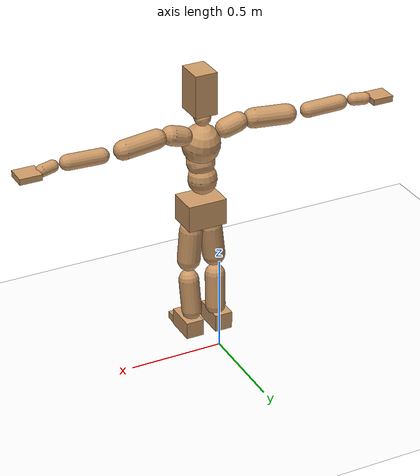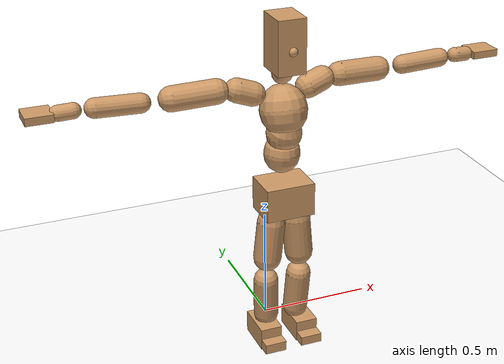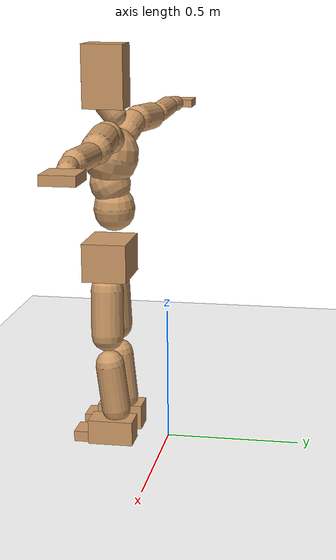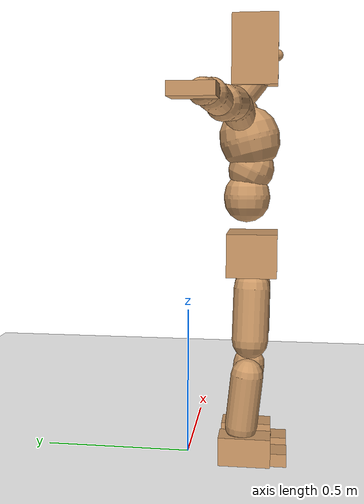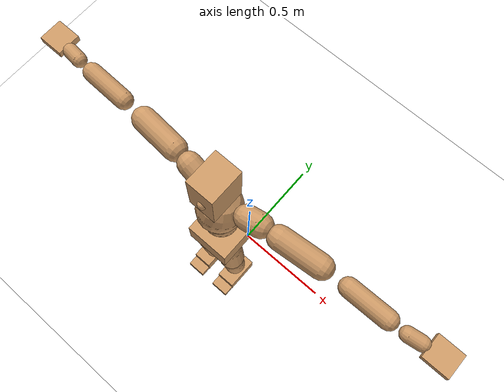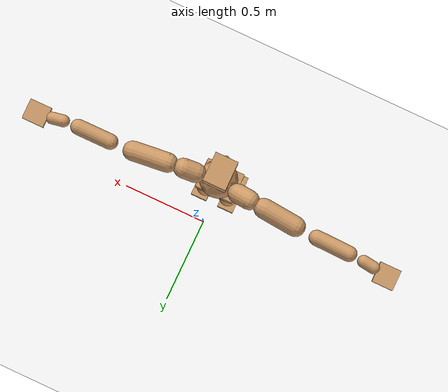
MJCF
<mujoco model="humanoid">
  <option integrator="implicitfast" />

  <visual>
    <global offwidth="1280" offheight="960" />
    <headlight active="1" ambient="0.34 0.34 0.34" diffuse="0.5 0.5 0.5" />
  </visual>

  <default>
    <joint damping="2" stiffness="2" armature="0.01" limited="true" solimplimit="0 .99 .01" />
    <geom condim="1" friction="0.7 0.005 0.0001" solimp=".99 .99 .003" solref="0.015 1" margin="0.001" rgba="0.8 0.6 .4 1" />
    <default class="smplcontact">
      <geom condim="3" friction="1. 0.005 0.0001" solref="0.015 1" solimp="0.98 0.98 0.001" priority="1" />
    </default>
    <default class="stiff_medium">
      <joint stiffness="10" />
    </default>
    <default class="stiff_medium_higher">
      <joint stiffness="50" />
    </default>
    <default class="stiff_high">
      <joint stiffness="100" />
    </default>
  </default>

  <asset>
    <texture type="skybox" builtin="gradient" rgb1="0.99 0.99 0.99" rgb2="0.608 0.828 0.892" width="100" />
    <texture builtin="flat" height="1278" mark="cross" markrgb="1 1 1" name="texgeom" random="0.01" rgb1="0.8 0.6 0.4" rgb2="0.8 0.6 0.4" type="cube" width="127" />
    <texture name="texplane" type="2d" builtin="checker" markrgb="1 1 1" rgb1="0.756 0.772 0.76" rgb2="0.6 0.6 0.6" width="100" height="100" />
    <material name="MatPlane" reflectance="0.5" texture="texplane" texrepeat="1 1" texuniform="true" />
    <material name="geom" texture="texgeom" texuniform="true" />
  </asset>

  <worldbody>
    <light name="tracking_light" pos="0 0 7" dir="0 0 -1" directional="true" cutoff="100" exponent="1" diffuse="1 1 1" specular="0.1 0.1 0.1" mode="trackcom" />
    <camera name="back" pos="0 3 2.4" xyaxes="-1 0 0 0 -1 2" mode="trackcom" />
    <camera name="side" pos="-3 0 2.4" xyaxes="0 -1 0 1 0 2" mode="trackcom" />
    <camera name="front_side" pos="-2.8 -2.8 0.8" xyaxes="0.5 -0.5 0 0.1 0.1 1" mode="trackcom" />
    <geom condim="3" name="floor" pos="0 0 0" rgba="1 1 1 1" size="100 100 .2" type="plane" material="MatPlane" />
    <body name="Pelvis" pos="-0.0018 -0.2233 0.714475" euler="90 0 0">
      <site name="Pelvis" size="0.01" />
      <freejoint name="Pelvis" />
      <geom type="box" pos="-0.0000 -0.0121 -0.0055" size="0.1069 0.0722 0.083" quat="1.0000 0.0000 0.0000 0.0000" density="3165.830099" name="Pelvis" />
      <body name="L_Hip" pos="0.052125 -0.06855 -0.0051">
        <joint name="L_Hip_x" type="hinge" pos="0 0 0" axis="1 0 0" stiffness="6.246094795918367" range="-160.0 22.92" class="stiff_medium" damping="8.291075045961076" armature="0.004891370984683403"/>
        <joint name="L_Hip_y" type="hinge" pos="0 0 0" axis="0 1 0" stiffness="6.283432346938776" range="-70.0 70.0" class="stiff_medium" damping="6.622206330553068" armature="0.006979245460609147"/>
        <joint name="L_Hip_z" type="hinge" pos="0 0 0" axis="0 0 1" stiffness="6.280236020408163" range="-28.65 90.0" class="stiff_medium" damping="5.5406378528423375" armature="0.004888139190404852"/>
        <geom type="capsule" density="2040.816327" fromto="0.005175 -0.05625 -0.000675 0.02055 -0.22515 -0.0027" size="0.0615" name="L_Hip" />
        <body name="L_Knee" pos="0.025725 -0.2814 -0.003375">
          <joint name="L_Knee_x" type="hinge" pos="0 0 0" axis="1 0 0" range="-5.16 171.89" damping="4.629153389768338" armature="0.005182973512521486" stiffness="1.292034693877551"/>
          <joint name="L_Knee_y" type="hinge" pos="0 0 0" axis="0 1 0" range="-4.58 6.88" damping="5.469884734588186" armature="0.007381715461698131" stiffness="1.2666279591836735"/>
          <joint name="L_Knee_z" type="hinge" pos="0 0 0" axis="0 0 1" range="-6.88 4.58" damping="4.641672627872135" armature="0.005166231774225988" stiffness="1.3032422448979593"/>
          <geom type="capsule" density="1234.567901" fromto="-0.002025 -0.0597 -0.006525 -0.008175 -0.2388 -0.02625" size="0.0541" name="L_Knee" />
          <body name="L_Ankle" pos="-0.0102 -0.2985 -0.032775">
            <joint name="L_Ankle_x" type="hinge" pos="0 0 0" axis="1 0 0" range="-45.84 45.84" class="stiff_medium" damping="4.385268345779512" armature="0.007122436468331768" stiffness="7.5"/>
            <joint name="L_Ankle_y" type="hinge" pos="0 0 0" axis="0 1 0" range="-74.48 22.92" class="stiff_medium" damping="2.209050591087885" armature="0.007229488168867754" stiffness="7.5"/>
            <joint name="L_Ankle_z" type="hinge" pos="0 0 0" axis="0 0 1" range="-4.58 4.58" class="stiff_medium" damping="4.627293284407269" armature="0.007930312274044672" stiffness="7.5"/>
            <geom type="box" pos="0.017475 -0.017925 0.01815" size="0.0483 0.0464 0.085" quat="1.0000 0.0000 0.0000 0.0000" density="449.071558" name="L_Ankle" class="smplcontact" />
            <body name="L_Toe" pos="0.0198 -0.04185 0.089475">
              <joint name="L_Toe_x" type="hinge" pos="0 0 0" axis="1 0 0" range="-91.67 22.92" armature="0.008336677887503873" damping="1.581456090522643" stiffness="1.5"/>
              <joint name="L_Toe_y" type="hinge" pos="0 0 0" axis="0 1 0" range="-4.58 4.58" armature="0.008828055290798205" damping="1.6273956455759186" stiffness="1.5"/>
              <joint name="L_Toe_z" type="hinge" pos="0 0 0" axis="0 0 1" range="-4.58 4.58" armature="0.00982159395199263" damping="1.71653085774704" stiffness="1.5"/>
              <geom type="box" pos="-0.00225 0.004125 0.0186" size="0.0478 0.02 0.0496" quat="1.0000 0.0000 0.0000 0.0000" density="423.206892" name="L_Toe" class="smplcontact" />
            </body>
          </body>
        </body>
      </body>
      <body name="R_Hip" pos="-0.050775 -0.067875 -0.003225">
        <joint name="R_Hip_x" type="hinge" pos="0 0 0" axis="1 0 0" stiffness="6.246094795918367" range="-160.0 22.92" class="stiff_medium" damping="8.291075045961076" armature="0.004891370984683403"/>
        <joint name="R_Hip_y" type="hinge" pos="0 0 0" axis="0 1 0" stiffness="6.283432346938776" range="-70.0 70.0" class="stiff_medium" damping="6.622206330553068" armature="0.006979245460609147"/>
        <joint name="R_Hip_z" type="hinge" pos="0 0 0" axis="0 0 1" stiffness="6.280236020408163" range="-90.0 28.65" class="stiff_medium" damping="5.5406378528423375" armature="0.004888139190404852"/>
        <geom type="capsule" density="2040.816327" fromto="-0.005775 -0.057375 -0.00135 -0.02295 -0.229575 -0.005325" size="0.0606" name="R_Hip" />
        <body name="R_Knee" pos="-0.028725 -0.28695 -0.006675">
          <joint name="R_Knee_x" type="hinge" pos="0 0 0" axis="1 0 0" range="-5.16 171.89" damping="4.629153389768338" armature="0.005182973512521486" stiffness="1.292034693877551"/>
          <joint name="R_Knee_y" type="hinge" pos="0 0 0" axis="0 1 0" range="-6.88 4.58" damping="5.469884734588186" armature="0.007381715461698131" stiffness="1.2666279591836735"/>
          <joint name="R_Knee_z" type="hinge" pos="0 0 0" axis="0 0 1" range="-4.58 6.88" damping="4.641672627872135" armature="0.005166231774225988" stiffness="1.3032422448979593"/>
          <geom type="capsule" density="1234.567901" fromto="0.0024 -0.059775 -0.006375 0.00945 -0.239025 -0.02535" size="0.0541" name="R_Knee" />
          <body name="R_Ankle" pos="0.01185 -0.2988 -0.031725">
            <joint name="R_Ankle_x" type="hinge" pos="0 0 0" axis="1 0 0" range="-45.84 45.84" class="stiff_medium" damping="4.385268345779512" armature="0.007122436468331768" stiffness="7.5"/>
            <joint name="R_Ankle_y" type="hinge" pos="0 0 0" axis="0 1 0" range="-22.92 74.48" class="stiff_medium" damping="2.209050591087885" armature="0.007229488168867754" stiffness="7.5"/>
            <joint name="R_Ankle_z" type="hinge" pos="0 0 0" axis="0 0 1" range="-4.58 4.58" class="stiff_medium" damping="4.627293284407269" armature="0.007930312274044672" stiffness="7.5"/>
            <geom type="box" pos="-0.0159 -0.01305 0.0192" size="0.0483 0.0478 0.0865" quat="1.0000 0.0000 0.0000 0.0000" density="434.700981" name="R_Ankle" class="smplcontact" />
            <body name="R_Toe" pos="-0.01905 -0.036075 0.092475">
              <joint name="R_Toe_x" type="hinge" pos="0 0 0" axis="1 0 0" range="-91.67 22.92" armature="0.008336677887503873" damping="1.581456090522643" stiffness="1.5"/>
              <joint name="R_Toe_y" type="hinge" pos="0 0 0" axis="0 1 0" range="-4.58 4.58" armature="0.008828055290798205" damping="1.6273956455759186" stiffness="1.5"/>
              <joint name="R_Toe_z" type="hinge" pos="0 0 0" axis="0 0 1" range="-4.58 4.58" armature="0.00982159395199263" damping="1.71653085774704" stiffness="1.5"/>
              <geom type="box" pos="0.00315 0.003375 0.017025" size="0.0479 0.0216 0.0493" quat="1.0000 0.0000 0.0000 0.0000" density="407.384095" name="R_Toe" class="smplcontact" />
            </body>
          </body>
        </body>
      </body>
      <body name="Torso" pos="-0.0025 0.109 -0.0267">
        <joint name="Torso_x" type="hinge" pos="0 0 0" axis="1 0 0" range="-25.78 57.3" class="stiff_medium" damping="16.249002662379556" armature="0.011000822944888125" stiffness="10.667084285714289"/>
        <joint name="Torso_y" type="hinge" pos="0 0 0" axis="0 1 0" range="-57.3 57.3" class="stiff_high" damping="25.827862257678852" armature="0.015782642166796142" stiffness="105.6664755102041"/>
        <joint name="Torso_z" type="hinge" pos="0 0 0" axis="0 0 1" range="-34.38 34.38" class="stiff_high" damping="22.95942684909094" armature="0.012628565201764912" stiffness="104.35375531914897"/>
        <geom type="capsule" density="2040.816327" fromto="0.0025 0.0608 0.0005 0.003 0.0743 0.0006" size="0.0769" name="Torso" />
        <body name="Spine" pos="0.0055 0.1352 0.0011">
          <joint name="Spine_x" type="hinge" pos="0 0 0" axis="1 0 0" stiffness="10.801640204081632" range="-25.78 57.3" class="stiff_medium" damping="16.529498689681223" armature="0.01124209211728705"/>
          <joint name="Spine_y" type="hinge" pos="0 0 0" axis="0 1 0" stiffness="10.993194042553192" range="-57.3 57.3" class="stiff_high" damping="10.550939846165114" armature="0.015822621024438047"/>
          <joint name="Spine_z" type="hinge" pos="0 0 0" axis="0 0 1" stiffness="21.950184081632656" range="-34.38 34.38" class="stiff_high" damping="14.755254913518769" armature="0.013775988465595869"/>
          <geom type="capsule" density="2040.816327" fromto="0.0007 0.0238 0.0114 0.0008 0.0291 0.014" size="0.0755" name="Spine" />
          <body name="Chest" pos="0.0015 0.0529 0.0254">
            <joint name="Chest_x" type="hinge" pos="0 0 0" axis="1 0 0" stiffness="11.160686250000001" range="-25.78 57.3" class="stiff_medium" damping="16.91302563562017" armature="0.011391192649850421"/>
            <joint name="Chest_y" type="hinge" pos="0 0 0" axis="0 1 0" stiffness="12.279827826086954" range="-57.3 57.3" class="stiff_high" damping="11.153527766970868" armature="0.015828955346832537"/>
            <joint name="Chest_z" type="hinge" pos="0 0 0" axis="0 0 1" stiffness="22.066057083333334" range="-34.38 34.38" class="stiff_high" damping="15.064016907343916" armature="0.01428316177394549"/>
            <geom type="capsule" density="2040.816327" fromto="-0.0009 0.0682 -0.0173 -0.001 0.0833 -0.0212" size="0.1002" name="Chest" />
            <body name="Neck" pos="-0.0028 0.2139 -0.0429">
              <joint name="Neck_x" type="hinge" pos="0 0 0" axis="1 0 0" range="-28.65 57.3" class="stiff_medium_higher" damping="10.000000000000004" armature="0.010000000000000009" stiffness="50.0"/>
              <joint name="Neck_y" type="hinge" pos="0 0 0" axis="0 1 0" range="-40.11 40.11" class="stiff_medium_higher" damping="10.0" armature="0.01" stiffness="50.0"/>
              <joint name="Neck_z" type="hinge" pos="0 0 0" axis="0 0 1" range="-40.11 40.11" class="stiff_medium_higher" damping="9.999999999999988" armature="0.009999999999999976" stiffness="50.0"/>
              <geom type="capsule" density="1000" fromto="0.001 0.013 0.0103 0.0041 0.052 0.0411" size="0.0436" name="Neck" />
              <body name="Head" pos="0.0052 0.065 0.0513">
                <joint name="Head_x" type="hinge" pos="0 0 0" axis="1 0 0" range="-28.65 57.3" class="stiff_medium_higher" damping="1.9999999999999978" armature="0.009999999999999978" stiffness="50.0"/>
                <joint name="Head_y" type="hinge" pos="0 0 0" axis="0 1 0" range="-40.11 40.11" class="stiff_medium_higher" damping="1.9999999999999998" armature="0.009999999999999998" stiffness="50.0"/>
                <joint name="Head_z" type="hinge" pos="0 0 0" axis="0 0 1" range="-40.11 40.11" class="stiff_medium_higher" damping="1.999999999999994" armature="0.00999999999999994" stiffness="50.0"/>
                <geom type="box" pos="-0.0042 0.0876 -0.0116" size="0.0606 0.1154 0.076" quat="1.0000 0.0000 0.0000 0.0000" density="1018.069894" name="Head" />
                <geom type="capsule" name="nose" size="0.02 0.01" pos="0 0.07 0.05" quat="1 0 0 0" mass="0" contype="0" conaffinity="0" />
              </body>
            </body>
            <body name="L_Thorax" pos="0.09456 0.14604 -0.04092">
              <joint name="L_Thorax_x" type="hinge" pos="0 0 0" axis="1 0 0" range="-10.89 4.58" class="stiff_medium_higher" damping="27.34282803714568" armature="0.013883161405287683" stiffness="67.31448112244898"/>
              <joint name="L_Thorax_y" type="hinge" pos="0 0 0" axis="0 1 0" range="-28.65 17.19" class="stiff_medium_higher" damping="29.39539222803986" armature="0.015973211475722778" stiffness="67.620175"/>
              <joint name="L_Thorax_z" type="hinge" pos="0 0 0" axis="0 0 1" range="-31.51 40.11" class="stiff_medium_higher" damping="29.39640952740424" armature="0.01597511513827913" stiffness="67.61679693877551"/>
              <geom type="capsule" density="1000" fromto="0.02184 0.00732 -0.00216 0.08736 0.02928 -0.00852" size="0.0521" name="L_Thorax" />
              <body name="L_Shoulder" pos="0.1092 0.0366 -0.01068">
                <joint name="L_Shoulder_x" type="hinge" pos="0 0 0" axis="1 0 0" range="-97.4 97.4" class="stiff_medium" damping="7.934224871342943" armature="0.013032307273704977" stiffness="13.417919999999999"/>
                <joint name="L_Shoulder_y" type="hinge" pos="0 0 0" axis="0 1 0" range="-108.86 80.21" class="stiff_medium" damping="8.787023272078152" armature="0.015885669306109254" stiffness="13.501298367346937"/>
                <joint name="L_Shoulder_z" type="hinge" pos="0 0 0" axis="0 0 1" range="-97.4 85.94" class="stiff_medium" damping="8.786069504764416" armature="0.01588800876452122" stiffness="13.496380000000002"/>
                <geom type="capsule" density="1000" fromto="0.06228 -0.00312 -0.0066 0.24924 -0.01224 -0.0264" size="0.0517" name="L_Shoulder" />
                <body name="L_Elbow" pos="0.31152 -0.01536 -0.033">
                  <joint name="L_Elbow_x" type="hinge" pos="0 0 0" axis="1 0 0" range="-17.19 4.58" damping="6.232456205291445" armature="0.011731525217588483" stiffness="2.6488293469387756"/>
                  <joint name="L_Elbow_y" type="hinge" pos="0 0 0" axis="0 1 0" range="-180.0 17.19" damping="7.156106367972159" armature="0.015461775606096717" stiffness="2.649623673469388"/>
                  <joint name="L_Elbow_z" type="hinge" pos="0 0 0" axis="0 0 1" range="-100.84 4.58" damping="7.157115854883433" armature="0.015474031127394245" stiffness="2.648272163265306"/>
                  <geom type="capsule" density="1000" fromto="0.05976 0.00216 -0.00024 0.23928 0.00864 -0.00108" size="0.0405" name="L_Elbow" />
                  <body name="L_Wrist" pos="0.29904 0.0108 -0.00144">
                    <joint name="L_Wrist_x" type="hinge" pos="0 0 0" axis="1 0 0" range="-180.0 22.92" armature="0.01147048725635329" damping="2.3885555565203194" stiffness="2.4869029183673472"/>
                    <joint name="L_Wrist_y" type="hinge" pos="0 0 0" axis="0 1 0" range="-17.19 17.19" armature="0.014137841032973877" damping="2.6585613747278862" stiffness="2.4996562653061227"/>
                    <joint name="L_Wrist_z" type="hinge" pos="0 0 0" axis="0 0 1" range="-22.92 22.92" armature="0.01428379874194635" damping="2.669498465346292" stiffness="2.4945122040816328"/>
                    <geom type="capsule" density="1000" fromto="0.02016 -0.00192 -0.0036 0.08064 -0.0078 -0.0144" size="0.0318" name="L_Wrist" class="smplcontact" />
                    <body name="L_Hand" pos="0.1008 -0.00984 -0.01788">
                      <joint name="L_Hand_x" type="hinge" pos="0 0 0" axis="1 0 0" range="-17.19 17.19" armature="0.010191691106290297" damping="2.2117892600831897" stiffness="2.4000000000000004"/>
                      <joint name="L_Hand_y" type="hinge" pos="0 0 0" axis="0 1 0" range="-51.57 51.57" armature="0.012318239464289435" damping="2.4316157062453208" stiffness="2.4000000000000004"/>
                      <joint name="L_Hand_z" type="hinge" pos="0 0 0" axis="0 0 1" range="-91.67 91.67" armature="0.01288509998431736" damping="2.4869354620641713" stiffness="2.4000000000000004"/>
                      <geom type="box" pos="0.05916 0.0012 -0.00696" size="0.0585 0.0158 0.0538" quat="1.0000 0.0000 0.0000 0.0000" density="400.552564" name="L_Hand" class="smplcontact" />
                    </body>
                  </body>
                </body>
              </body>
            </body>
            <body name="R_Thorax" pos="-0.09816 0.14256 -0.04632">
              <joint name="R_Thorax_x" type="hinge" pos="0 0 0" axis="1 0 0" range="-10.89 4.58" class="stiff_medium_higher" damping="27.34282803714568" armature="0.013883161405287683" stiffness="67.31448112244898"/>
              <joint name="R_Thorax_y" type="hinge" pos="0 0 0" axis="0 1 0" range="-17.19 28.65" class="stiff_medium_higher" damping="29.39539222803986" armature="0.015973211475722778" stiffness="67.620175"/>
              <joint name="R_Thorax_z" type="hinge" pos="0 0 0" axis="0 0 1" range="-40.11 31.51" class="stiff_medium_higher" damping="29.39640952740424" armature="0.01597511513827913" stiffness="67.61679693877551"/>
              <geom type="capsule" density="1000" fromto="-0.02304 0.0078 -0.00216 -0.09216 0.0312 -0.00876" size="0.0511" name="R_Thorax" />
              <body name="R_Shoulder" pos="-0.1152 0.03912 -0.01092">
                <joint name="R_Shoulder_x" type="hinge" pos="0 0 0" axis="1 0 0" range="-97.4 97.4" class="stiff_medium" damping="7.934224871342943" armature="0.013032307273704977" stiffness="13.417919999999999"/>
                <joint name="R_Shoulder_y" type="hinge" pos="0 0 0" axis="0 1 0" range="-80.21 108.86" class="stiff_medium" damping="8.787023272078152" armature="0.015885669306109254" stiffness="13.501298367346937"/>
                <joint name="R_Shoulder_z" type="hinge" pos="0 0 0" axis="0 0 1" range="-85.94 97.4" class="stiff_medium" damping="8.786069504764416" armature="0.01588800876452122" stiffness="13.496380000000002"/>
                <geom type="capsule" density="1000" fromto="-0.06084 -0.00324 -0.00516 -0.2436 -0.01284 -0.02052" size="0.0531" name="R_Shoulder" />
                <body name="R_Elbow" pos="-0.30444 -0.01596 -0.02568">
                  <joint name="R_Elbow_x" type="hinge" pos="0 0 0" axis="1 0 0" range="-17.19 4.58" damping="6.232456205291445" armature="0.011731525217588483" stiffness="2.6488293469387756"/>
                  <joint name="R_Elbow_y" type="hinge" pos="0 0 0" axis="0 1 0" range="-17.19 180.0" damping="7.156106367972159" armature="0.015461775606096717" stiffness="2.649623673469388"/>
                  <joint name="R_Elbow_z" type="hinge" pos="0 0 0" axis="0 0 1" range="-4.58 100.84" damping="7.157115854883433" armature="0.015474031127394245" stiffness="2.648272163265306"/>
                  <geom type="capsule" density="1000" fromto="-0.06132 0.00192 -0.00132 -0.24504 0.00744 -0.00528" size="0.0408" name="R_Elbow" />
                  <body name="R_Wrist" pos="-0.30636 0.00936 -0.00672">
                    <joint name="R_Wrist_x" type="hinge" pos="0 0 0" axis="1 0 0" range="-180.0 22.92" armature="0.01147048725635329" damping="2.3885555565203194" stiffness="2.4869029183673472"/>
                    <joint name="R_Wrist_y" type="hinge" pos="0 0 0" axis="0 1 0" range="-17.19 17.19" armature="0.014137841032973877" damping="2.6585613747278862" stiffness="2.4996562653061227"/>
                    <joint name="R_Wrist_z" type="hinge" pos="0 0 0" axis="0 0 1" range="-22.92 22.92" armature="0.01428379874194635" damping="2.669498465346292" stiffness="2.4945122040816328"/>
                    <geom type="capsule" density="1000" fromto="-0.02028 -0.00144 -0.00252 -0.08124 -0.00588 -0.00996" size="0.0326" name="R_Wrist" class="smplcontact" />
                    <body name="R_Hand" pos="-0.10152 -0.00732 -0.01236">
                      <joint name="R_Hand_x" type="hinge" pos="0 0 0" axis="1 0 0" range="-17.19 17.19" armature="0.010191691106290297" damping="2.2117892600831897" stiffness="2.4000000000000004"/>
                      <joint name="R_Hand_y" type="hinge" pos="0 0 0" axis="0 1 0" range="-51.57 51.57" armature="0.012318239464289435" damping="2.4316157062453208" stiffness="2.4000000000000004"/>
                      <joint name="R_Hand_z" type="hinge" pos="0 0 0" axis="0 0 1" range="-91.67 91.67" armature="0.01288509998431736" damping="2.4869354620641713" stiffness="2.4000000000000004"/>
                      <geom type="box" pos="-0.05544 -0.00108 -0.00948" size="0.0569 0.0164 0.0546" quat="1.0000 0.0000 0.0000 0.0000" density="403.679611" name="R_Hand" class="smplcontact" />
                    </body>
                  </body>
                </body>
              </body>
            </body>
          </body>
        </body>
      </body>
    </body>
  </worldbody>
  <actuator>
    <general name="L_Hip_x" joint="L_Hip_x" biastype="affine" gainprm="179.46908180691764" biasprm="-134.4938865848036 -112.42970632653059 -1.1054766727948102" ctrllimited="true" ctrlrange="-1 1" forcerange="-224.85941265306118 224.85941265306118" />
    <general name="L_Hip_y" joint="L_Hip_y" biastype="affine" gainprm="138.1798943032993" biasprm="0.0 -113.10178224489796 -1.3244412661106135" ctrllimited="true" ctrlrange="-1 1" forcerange="-226.20356448979592 226.20356448979592" />
    <general name="L_Hip_z" joint="L_Hip_z" biastype="affine" gainprm="117.04788889139031" biasprm="60.52160120932823 -113.04424836734694 -1.1081275705684674" ctrllimited="true" ctrlrange="-1 1" forcerange="-226.08849673469388 226.08849673469388" />
    <general name="L_Knee_x" joint="L_Knee_x" biastype="affine" gainprm="179.66355466802756" biasprm="169.1912141756579 -116.2831224489796 -1.1572883474420845" ctrllimited="true" ctrlrange="-1 1" forcerange="-232.5662448979592 232.5662448979592" />
    <general name="L_Knee_y" joint="L_Knee_y" biastype="affine" gainprm="11.400491346869197" biasprm="2.2880567275566452 -113.99651632653062 -1.3674711836470466" ctrllimited="true" ctrlrange="-1 1" forcerange="-227.99303265306125 227.99303265306125" />
    <general name="L_Knee_z" joint="L_Knee_z" biastype="affine" gainprm="11.730044191831292" biasprm="-2.3541973508910967 -117.29180204081634 -1.1604181569680339" ctrllimited="true" ctrlrange="-1 1" forcerange="-234.58360408163267 234.58360408163267" />
    <general name="L_Ankle_x" joint="L_Ankle_x" biastype="affine" gainprm="54.00397771520855" biasprm="0.0 -67.5 -1.461756115259837" ctrllimited="true" ctrlrange="-1 1" forcerange="-135.0 135.0" />
    <general name="L_Ankle_y" joint="L_Ankle_y" biastype="affine" gainprm="57.37333583618361" biasprm="-30.371346978579332 -67.5 -1.4727003940585899" ctrllimited="true" ctrlrange="-1 1" forcerange="-135.0 135.0" />
    <general name="L_Ankle_z" joint="L_Ankle_z" biastype="affine" gainprm="5.395685382540469" biasprm="0.0 -67.5 -1.5424310948024231" ctrllimited="true" ctrlrange="-1 1" forcerange="-135.0 135.0" />
    <general name="L_Toe_x" joint="L_Toe_x" biastype="affine" gainprm="53.999265326228155" biasprm="-32.39767424014474 -54.0 -0.6325824362090572" ctrllimited="true" ctrlrange="-1 1" forcerange="-108.0 108.0" />
    <general name="L_Toe_y" joint="L_Toe_y" biastype="affine" gainprm="4.3165483060323755" biasprm="0.0 -54.0 -0.6509582582303675" ctrllimited="true" ctrlrange="-1 1" forcerange="-108.0 108.0" />
    <general name="L_Toe_z" joint="L_Toe_z" biastype="affine" gainprm="4.3165483060323755" biasprm="0.0 -54.0 -0.686612343098816" ctrllimited="true" ctrlrange="-1 1" forcerange="-108.0 108.0" />
    <general name="R_Hip_x" joint="R_Hip_x" biastype="affine" gainprm="179.46908180691764" biasprm="-134.4938865848036 -112.42970632653059 -1.1054766727948102" ctrllimited="true" ctrlrange="-1 1" forcerange="-224.85941265306118 224.85941265306118" />
    <general name="R_Hip_y" joint="R_Hip_y" biastype="affine" gainprm="138.1798943032993" biasprm="0.0 -113.10178224489796 -1.3244412661106135" ctrllimited="true" ctrlrange="-1 1" forcerange="-226.20356448979592 226.20356448979592" />
    <general name="R_Hip_z" joint="R_Hip_z" biastype="affine" gainprm="117.04788889139031" biasprm="-60.52160120932823 -113.04424836734694 -1.1081275705684674" ctrllimited="true" ctrlrange="-1 1" forcerange="-226.08849673469388 226.08849673469388" />
    <general name="R_Knee_x" joint="R_Knee_x" biastype="affine" gainprm="179.66355466802756" biasprm="169.1912141756579 -116.2831224489796 -1.1572883474420845" ctrllimited="true" ctrlrange="-1 1" forcerange="-232.5662448979592 232.5662448979592" />
    <general name="R_Knee_y" joint="R_Knee_y" biastype="affine" gainprm="11.400491346869197" biasprm="-2.2880567275566452 -113.99651632653062 -1.3674711836470466" ctrllimited="true" ctrlrange="-1 1" forcerange="-227.99303265306125 227.99303265306125" />
    <general name="R_Knee_z" joint="R_Knee_z" biastype="affine" gainprm="11.730044191831292" biasprm="2.3541973508910967 -117.29180204081634 -1.1604181569680339" ctrllimited="true" ctrlrange="-1 1" forcerange="-234.58360408163267 234.58360408163267" />
    <general name="R_Ankle_x" joint="R_Ankle_x" biastype="affine" gainprm="54.00397771520855" biasprm="0.0 -67.5 -1.461756115259837" ctrllimited="true" ctrlrange="-1 1" forcerange="-135.0 135.0" />
    <general name="R_Ankle_y" joint="R_Ankle_y" biastype="affine" gainprm="57.37333583618361" biasprm="30.371346978579332 -67.5 -1.4727003940585899" ctrllimited="true" ctrlrange="-1 1" forcerange="-135.0 135.0" />
    <general name="R_Ankle_z" joint="R_Ankle_z" biastype="affine" gainprm="5.395685382540469" biasprm="0.0 -67.5 -1.5424310948024231" ctrllimited="true" ctrlrange="-1 1" forcerange="-135.0 135.0" />
    <general name="R_Toe_x" joint="R_Toe_x" biastype="affine" gainprm="53.999265326228155" biasprm="-32.39767424014474 -54.0 -0.6325824362090572" ctrllimited="true" ctrlrange="-1 1" forcerange="-108.0 108.0" />
    <general name="R_Toe_y" joint="R_Toe_y" biastype="affine" gainprm="4.3165483060323755" biasprm="0.0 -54.0 -0.6509582582303675" ctrllimited="true" ctrlrange="-1 1" forcerange="-108.0 108.0" />
    <general name="R_Toe_z" joint="R_Toe_z" biastype="affine" gainprm="4.3165483060323755" biasprm="0.0 -54.0 -0.686612343098816" ctrllimited="true" ctrlrange="-1 1" forcerange="-108.0 108.0" />
    <general name="Torso_x" joint="Torso_x" biastype="affine" gainprm="185.60976811664653" biasprm="70.4191127953382 -256.0100228571429 -4.333067376634548" ctrllimited="true" ctrlrange="-1 1" forcerange="-384.01503428571436 384.01503428571436" />
    <general name="Torso_y" joint="Torso_y" biastype="affine" gainprm="253.61822171989738" biasprm="0.0 -253.59954122448983 -5.165572451535771" ctrllimited="true" ctrlrange="-1 1" forcerange="-380.39931183673474 380.39931183673474" />
    <general name="Torso_z" joint="Torso_z" biastype="affine" gainprm="150.28047671343057" biasprm="0.0 -250.44901276595752 -4.591885369818188" ctrllimited="true" ctrlrange="-1 1" forcerange="-375.6735191489363 375.6735191489363" />
    <general name="Spine_x" joint="Spine_x" biastype="affine" gainprm="187.9510726510386" biasprm="71.3073881795948 -259.2393648979592 -4.407866317248326" ctrllimited="true" ctrlrange="-1 1" forcerange="-388.8590473469388 388.8590473469388" />
    <general name="Spine_y" joint="Spine_y" biastype="affine" gainprm="263.8560915968915" biasprm="0.0 -263.8366570212766 -5.275469923082557" ctrllimited="true" ctrlrange="-1 1" forcerange="-395.7549855319149 395.7549855319149" />
    <general name="Spine_z" joint="Spine_z" biastype="affine" gainprm="158.05296693189538" biasprm="0.0 -263.4022089795919 -4.918418304506257" ctrllimited="true" ctrlrange="-1 1" forcerange="-395.1033134693878 395.1033134693878" />
    <general name="Chest_x" joint="Chest_x" biastype="affine" gainprm="194.19855805015155" biasprm="73.67764263048598 -267.85647 -4.510140169498712" ctrllimited="true" ctrlrange="-1 1" forcerange="-401.78470500000003 401.78470500000003" />
    <general name="Chest_y" joint="Chest_y" biastype="affine" gainprm="294.73757700737673" biasprm="0.0 -294.71586782608694 -5.576763883485434" ctrllimited="true" ctrlrange="-1 1" forcerange="-442.0738017391304 442.0738017391304" />
    <general name="Chest_z" joint="Chest_z" biastype="affine" gainprm="158.88731399878043" biasprm="0.0 -264.792685 -5.021338969114638" ctrllimited="true" ctrlrange="-1 1" forcerange="-397.1890275 397.1890275" />
    <general name="Neck_x" joint="Neck_x" biastype="affine" gainprm="27.00198885760427" biasprm="9.000662952534757 -36.0 -0.8000000000000004" ctrllimited="true" ctrlrange="-1 1" forcerange="-72.0 72.0" />
    <general name="Neck_y" joint="Neck_y" biastype="affine" gainprm="25.20185626709732" biasprm="0.0 -36.0 -0.8" ctrllimited="true" ctrlrange="-1 1" forcerange="-72.0 72.0" />
    <general name="Neck_z" joint="Neck_z" biastype="affine" gainprm="25.20185626709732" biasprm="0.0 -36.0 -0.799999999999999" ctrllimited="true" ctrlrange="-1 1" forcerange="-72.0 72.0" />
    <general name="Head_x" joint="Head_x" biastype="affine" gainprm="18.001325905069514" biasprm="6.000441968356505 -24.0 -0.7999999999999992" ctrllimited="true" ctrlrange="-1 1" forcerange="-48.0 48.0" />
    <general name="Head_y" joint="Head_y" biastype="affine" gainprm="16.801237511398213" biasprm="0.0 -24.0 -0.7999999999999999" ctrllimited="true" ctrlrange="-1 1" forcerange="-48.0 48.0" />
    <general name="Head_z" joint="Head_z" biastype="affine" gainprm="16.801237511398213" biasprm="0.0 -24.0 -0.7999999999999976" ctrllimited="true" ctrlrange="-1 1" forcerange="-48.0 48.0" />
    <general name="L_Thorax_x" joint="L_Thorax_x" biastype="affine" gainprm="21.810088599489532" biasprm="-8.896034845687073 -161.55475469387756 -2.1874262429716547" ctrllimited="true" ctrlrange="-1 1" forcerange="-323.1095093877551 323.1095093877551" />
    <general name="L_Thorax_y" joint="L_Thorax_y" biastype="affine" gainprm="64.92014975641781" biasprm="-16.230037439104454 -162.28842 -2.3516313782431886" ctrllimited="true" ctrlrange="-1 1" forcerange="-324.57684 324.57684" />
    <general name="L_Thorax_z" joint="L_Thorax_z" biastype="affine" gainprm="101.42558571489965" biasprm="12.179000797935451 -162.28031265306123 -2.3517127621923395" ctrllimited="true" ctrlrange="-1 1" forcerange="-324.56062530612246 324.56062530612246" />
    <general name="L_Shoulder_x" joint="L_Shoulder_x" biastype="affine" gainprm="109.48705143225524" biasprm="0.0 -64.406016 -2.115793299024785" ctrllimited="true" ctrlrange="-1 1" forcerange="-128.812032 128.812032" />
    <general name="L_Shoulder_y" joint="L_Shoulder_y" biastype="affine" gainprm="106.92684888169526" biasprm="-16.202751470146342 -64.80623216326529 -2.3432062058875074" ctrllimited="true" ctrlrange="-1 1" forcerange="-129.61246432653058 129.61246432653058" />
    <general name="L_Shoulder_z" joint="L_Shoulder_z" biastype="affine" gainprm="103.64852686442701" biasprm="-6.478739597831004 -64.782624 -2.3429518679371775" ctrllimited="true" ctrlrange="-1 1" forcerange="-129.565248 129.565248" />
    <general name="L_Elbow_x" joint="L_Elbow_x" biastype="affine" gainprm="18.115998712513008" biasprm="-10.493465492181402 -95.35785648979592 -0.9971929928466313" ctrllimited="true" ctrlrange="-1 1" forcerange="-190.71571297959184 190.71571297959184" />
    <general name="L_Elbow_y" joint="L_Elbow_y" biastype="affine" gainprm="164.14171059385552" biasprm="-135.52366703070956 -95.38645224489797 -1.1449770188755455" ctrllimited="true" ctrlrange="-1 1" forcerange="-190.77290448979593 190.77290448979593" />
    <general name="L_Elbow_z" joint="L_Elbow_z" biastype="affine" gainprm="87.70725119427513" biasprm="-80.08632138077144 -95.33779787755103 -1.1451385367813491" ctrllimited="true" ctrlrange="-1 1" forcerange="-190.67559575510205 190.67559575510205" />
    <general name="L_Wrist_x" joint="L_Wrist_x" biastype="affine" gainprm="26.423011144121567" biasprm="-20.454004487081686 -14.921417510204083 -0.9554222226081278" ctrllimited="true" ctrlrange="-1 1" forcerange="-29.842835020408167 29.842835020408167" />
    <general name="L_Wrist_y" joint="L_Wrist_y" biastype="affine" gainprm="4.499712708242443" biasprm="0.0 -14.997937591836736 -1.0634245498911545" ctrllimited="true" ctrlrange="-1 1" forcerange="-29.995875183673473 29.995875183673473" />
    <general name="L_Wrist_z" joint="L_Wrist_z" biastype="affine" gainprm="5.987270287979567" biasprm="0.0 -14.967073224489797 -1.0677993861385169" ctrllimited="true" ctrlrange="-1 1" forcerange="-29.934146448979593 29.934146448979593" />
    <general name="L_Hand_x" joint="L_Hand_x" biastype="affine" gainprm="4.320318217216685" biasprm="0.0 -14.400000000000002 -0.8847157040332759" ctrllimited="true" ctrlrange="-1 1" forcerange="-28.800000000000004 28.800000000000004" />
    <general name="L_Hand_y" joint="L_Hand_y" biastype="affine" gainprm="12.960954651650052" biasprm="0.0 -14.400000000000002 -0.9726462824981283" ctrllimited="true" ctrlrange="-1 1" forcerange="-28.800000000000004 28.800000000000004" />
    <general name="L_Hand_z" joint="L_Hand_z" biastype="affine" gainprm="23.03918388436611" biasprm="0.0 -14.400000000000002 -0.9947741848256686" ctrllimited="true" ctrlrange="-1 1" forcerange="-28.800000000000004 28.800000000000004" />
    <general name="R_Thorax_x" joint="R_Thorax_x" biastype="affine" gainprm="21.810088599489532" biasprm="-8.896034845687073 -161.55475469387756 -2.1874262429716547" ctrllimited="true" ctrlrange="-1 1" forcerange="-323.1095093877551 323.1095093877551" />
    <general name="R_Thorax_y" joint="R_Thorax_y" biastype="affine" gainprm="64.92014975641781" biasprm="16.230037439104443 -162.28842 -2.3516313782431886" ctrllimited="true" ctrlrange="-1 1" forcerange="-324.57684 324.57684" />
    <general name="R_Thorax_z" joint="R_Thorax_z" biastype="affine" gainprm="101.42558571489965" biasprm="-12.179000797935451 -162.28031265306123 -2.3517127621923395" ctrllimited="true" ctrlrange="-1 1" forcerange="-324.56062530612246 324.56062530612246" />
    <general name="R_Shoulder_x" joint="R_Shoulder_x" biastype="affine" gainprm="109.48705143225524" biasprm="0.0 -64.406016 -2.115793299024785" ctrllimited="true" ctrlrange="-1 1" forcerange="-128.812032 128.812032" />
    <general name="R_Shoulder_y" joint="R_Shoulder_y" biastype="affine" gainprm="106.92684888169526" biasprm="16.202751470146342 -64.80623216326529 -2.3432062058875074" ctrllimited="true" ctrlrange="-1 1" forcerange="-129.61246432653058 129.61246432653058" />
    <general name="R_Shoulder_z" joint="R_Shoulder_z" biastype="affine" gainprm="103.64852686442701" biasprm="6.478739597830989 -64.782624 -2.3429518679371775" ctrllimited="true" ctrlrange="-1 1" forcerange="-129.565248 129.565248" />
    <general name="R_Elbow_x" joint="R_Elbow_x" biastype="affine" gainprm="18.115998712513008" biasprm="-10.493465492181402 -95.35785648979592 -0.9971929928466313" ctrllimited="true" ctrlrange="-1 1" forcerange="-190.71571297959184 190.71571297959184" />
    <general name="R_Elbow_y" joint="R_Elbow_y" biastype="affine" gainprm="164.14171059385552" biasprm="135.52366703070956 -95.38645224489797 -1.1449770188755455" ctrllimited="true" ctrlrange="-1 1" forcerange="-190.77290448979593 190.77290448979593" />
    <general name="R_Elbow_z" joint="R_Elbow_z" biastype="affine" gainprm="87.70725119427513" biasprm="80.08632138077142 -95.33779787755103 -1.1451385367813491" ctrllimited="true" ctrlrange="-1 1" forcerange="-190.67559575510205 190.67559575510205" />
    <general name="R_Wrist_x" joint="R_Wrist_x" biastype="affine" gainprm="26.423011144121567" biasprm="-20.454004487081686 -14.921417510204083 -0.9554222226081278" ctrllimited="true" ctrlrange="-1 1" forcerange="-29.842835020408167 29.842835020408167" />
    <general name="R_Wrist_y" joint="R_Wrist_y" biastype="affine" gainprm="4.499712708242443" biasprm="0.0 -14.997937591836736 -1.0634245498911545" ctrllimited="true" ctrlrange="-1 1" forcerange="-29.995875183673473 29.995875183673473" />
    <general name="R_Wrist_z" joint="R_Wrist_z" biastype="affine" gainprm="5.987270287979567" biasprm="0.0 -14.967073224489797 -1.0677993861385169" ctrllimited="true" ctrlrange="-1 1" forcerange="-29.934146448979593 29.934146448979593" />
    <general name="R_Hand_x" joint="R_Hand_x" biastype="affine" gainprm="4.320318217216685" biasprm="0.0 -14.400000000000002 -0.8847157040332759" ctrllimited="true" ctrlrange="-1 1" forcerange="-28.800000000000004 28.800000000000004" />
    <general name="R_Hand_y" joint="R_Hand_y" biastype="affine" gainprm="12.960954651650052" biasprm="0.0 -14.400000000000002 -0.9726462824981283" ctrllimited="true" ctrlrange="-1 1" forcerange="-28.800000000000004 28.800000000000004" />
    <general name="R_Hand_z" joint="R_Hand_z" biastype="affine" gainprm="23.03918388436611" biasprm="0.0 -14.400000000000002 -0.9947741848256686" ctrllimited="true" ctrlrange="-1 1" forcerange="-28.800000000000004 28.800000000000004" />
  </actuator>
  <contact>
    <exclude body1="Torso" body2="Chest" />
    <exclude body1="Head" body2="Chest" />
    <exclude body1="R_Knee" body2="R_Toe" />
    <exclude body1="R_Knee" body2="L_Ankle" />
    <exclude body1="R_Knee" body2="L_Toe" />
    <exclude body1="L_Knee" body2="L_Toe" />
    <exclude body1="L_Knee" body2="R_Ankle" />
    <exclude body1="L_Knee" body2="R_Toe" />
    <exclude body1="L_Shoulder" body2="Chest" />
    <exclude body1="R_Shoulder" body2="Chest" />
  </contact>
  <sensor>
    <framelinvel name="sensor_Pelvis_framelinvel" objtype="xbody" objname="Pelvis" />
    <framelinvel name="sensor_L_Hip_framelinvel" objtype="xbody" objname="L_Hip" />
    <framelinvel name="sensor_L_Knee_framelinvel" objtype="xbody" objname="L_Knee" />
    <framelinvel name="sensor_L_Ankle_framelinvel" objtype="xbody" objname="L_Ankle" />
    <framelinvel name="sensor_L_Toe_framelinvel" objtype="xbody" objname="L_Toe" />
    <framelinvel name="sensor_R_Hip_framelinvel" objtype="xbody" objname="R_Hip" />
    <framelinvel name="sensor_R_Knee_framelinvel" objtype="xbody" objname="R_Knee" />
    <framelinvel name="sensor_R_Ankle_framelinvel" objtype="xbody" objname="R_Ankle" />
    <framelinvel name="sensor_R_Toe_framelinvel" objtype="xbody" objname="R_Toe" />
    <framelinvel name="sensor_Torso_framelinvel" objtype="xbody" objname="Torso" />
    <framelinvel name="sensor_Spine_framelinvel" objtype="xbody" objname="Spine" />
    <framelinvel name="sensor_Chest_framelinvel" objtype="xbody" objname="Chest" />
    <framelinvel name="sensor_Neck_framelinvel" objtype="xbody" objname="Neck" />
    <framelinvel name="sensor_Head_framelinvel" objtype="xbody" objname="Head" />
    <framelinvel name="sensor_L_Thorax_framelinvel" objtype="xbody" objname="L_Thorax" />
    <framelinvel name="sensor_L_Shoulder_framelinvel" objtype="xbody" objname="L_Shoulder" />
    <framelinvel name="sensor_L_Elbow_framelinvel" objtype="xbody" objname="L_Elbow" />
    <framelinvel name="sensor_L_Wrist_framelinvel" objtype="xbody" objname="L_Wrist" />
    <framelinvel name="sensor_L_Hand_framelinvel" objtype="xbody" objname="L_Hand" />
    <framelinvel name="sensor_R_Thorax_framelinvel" objtype="xbody" objname="R_Thorax" />
    <framelinvel name="sensor_R_Shoulder_framelinvel" objtype="xbody" objname="R_Shoulder" />
    <framelinvel name="sensor_R_Elbow_framelinvel" objtype="xbody" objname="R_Elbow" />
    <framelinvel name="sensor_R_Wrist_framelinvel" objtype="xbody" objname="R_Wrist" />
    <framelinvel name="sensor_R_Hand_framelinvel" objtype="xbody" objname="R_Hand" />
    <frameangvel name="sensor_Pelvis_frameangvel" objtype="xbody" objname="Pelvis" />
    <frameangvel name="sensor_L_Hip_frameangvel" objtype="xbody" objname="L_Hip" />
    <frameangvel name="sensor_L_Knee_frameangvel" objtype="xbody" objname="L_Knee" />
    <frameangvel name="sensor_L_Ankle_frameangvel" objtype="xbody" objname="L_Ankle" />
    <frameangvel name="sensor_L_Toe_frameangvel" objtype="xbody" objname="L_Toe" />
    <frameangvel name="sensor_R_Hip_frameangvel" objtype="xbody" objname="R_Hip" />
    <frameangvel name="sensor_R_Knee_frameangvel" objtype="xbody" objname="R_Knee" />
    <frameangvel name="sensor_R_Ankle_frameangvel" objtype="xbody" objname="R_Ankle" />
    <frameangvel name="sensor_R_Toe_frameangvel" objtype="xbody" objname="R_Toe" />
    <frameangvel name="sensor_Torso_frameangvel" objtype="xbody" objname="Torso" />
    <frameangvel name="sensor_Spine_frameangvel" objtype="xbody" objname="Spine" />
    <frameangvel name="sensor_Chest_frameangvel" objtype="xbody" objname="Chest" />
    <frameangvel name="sensor_Neck_frameangvel" objtype="xbody" objname="Neck" />
    <frameangvel name="sensor_Head_frameangvel" objtype="xbody" objname="Head" />
    <frameangvel name="sensor_L_Thorax_frameangvel" objtype="xbody" objname="L_Thorax" />
    <frameangvel name="sensor_L_Shoulder_frameangvel" objtype="xbody" objname="L_Shoulder" />
    <frameangvel name="sensor_L_Elbow_frameangvel" objtype="xbody" objname="L_Elbow" />
    <frameangvel name="sensor_L_Wrist_frameangvel" objtype="xbody" objname="L_Wrist" />
    <frameangvel name="sensor_L_Hand_frameangvel" objtype="xbody" objname="L_Hand" />
    <frameangvel name="sensor_R_Thorax_frameangvel" objtype="xbody" objname="R_Thorax" />
    <frameangvel name="sensor_R_Shoulder_frameangvel" objtype="xbody" objname="R_Shoulder" />
    <frameangvel name="sensor_R_Elbow_frameangvel" objtype="xbody" objname="R_Elbow" />
    <frameangvel name="sensor_R_Wrist_frameangvel" objtype="xbody" objname="R_Wrist" />
    <frameangvel name="sensor_R_Hand_frameangvel" objtype="xbody" objname="R_Hand" />
    <subtreelinvel name="Chest_subtreelinvel" body="Chest" />
    <gyro name="Pelvis_gyro" site="Pelvis" />
  </sensor>
</mujoco>
